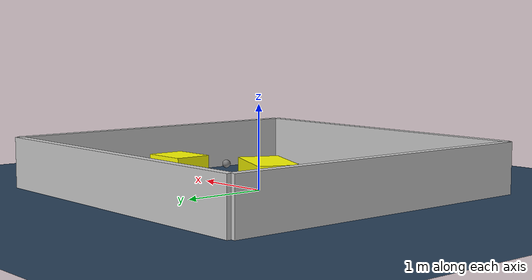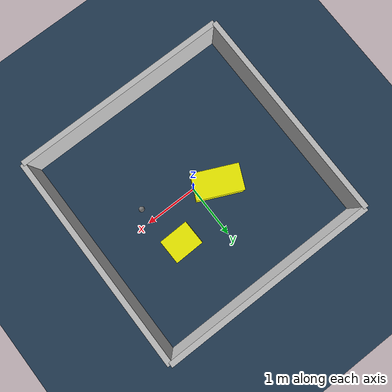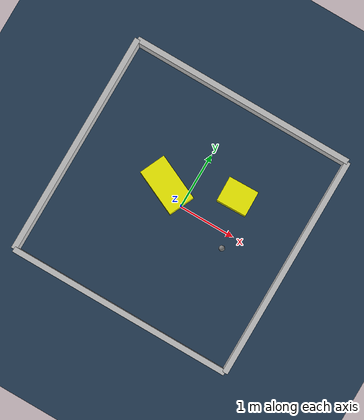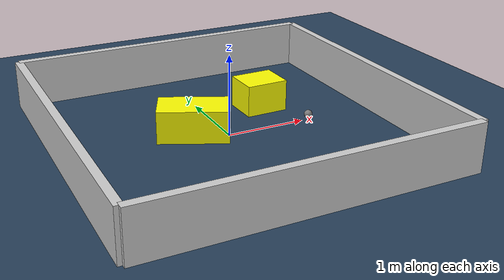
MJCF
<?xml version="1.0" ?>
<mujoco model="generated_environment">
  <option timestep="0.01" integrator="RK4" cone="elliptic"/>
  <default>
    <geom density="1"/>
  </default>
  <asset>
    <texture builtin="gradient" height="3072" rgb1="0.3 0.5 0.7" rgb2="0 0 0" type="skybox" width="512"/>
    <texture builtin="checker" height="300" mark="edge" markrgb="0.8 0.8 0.8" name="groundplane" rgb1="0.2 0.3 0.4" rgb2="0.1 0.2 0.3" type="2d" width="300"/>
    <material name="groundplane" reflectance="0.2" texrepeat="5 5" texture="groundplane" texuniform="true"/>
    <material name="robot" rgba="0.0 1.0 0.0 1"/>
  </asset>
  <worldbody>
    <light dir="0 0 -1" directional="true" pos="0 0 1.5"/>
    <geom condim="4" friction="1.0 0.005 0.001" material="groundplane" name="floor" size="0 0 0.05" type="plane"/>
    <body name="walls">
      <geom name="wall_1" condim="4" pos="-2.0 0.0 0.3" rgba="0.800000011920929 0.800000011920929 0.800000011920929 1.0" size="0.05 2.0 0.3" type="box"/>
      <geom name="wall_2" condim="4" pos="2.0 0.0 0.3" rgba="0.800000011920929 0.800000011920929 0.800000011920929 1.0" size="0.05 2.0 0.3" type="box"/>
      <geom name="wall_3" condim="4" pos="0.0 -2.0 0.3" rgba="0.800000011920929 0.800000011920929 0.800000011920929 1.0" size="2.0 0.05 0.3" type="box"/>
      <geom name="wall_4" condim="4" pos="0.0 2.0 0.3" rgba="0.800000011920929 0.800000011920929 0.800000011920929 1.0" size="2.0 0.05 0.3" type="box"/>
    </body>
    <body name="robot">
      <joint name="joint_x" type="slide" pos="0 0 0" axis="1 0 0"/>
      <joint name="joint_y" type="slide" pos="0 0 0" axis="0 1 0"/>
      <geom name="robot" type="sphere" pos="0.9309177934274664 -0.2566684570783597 0.2" size="0.05" mass="5." friction="1.0 0.005 0.0001" condim="4"/>
      <site name="sensor_ball"/>
    </body>
    <body name="obstacle_1_movable">
      <geom name="obstacle_1_movable" condim="4" pos="0.721962427760757 0.6088291767605953 0.2" euler="0 0 1.257092278193248" friction="1.0 0.005 0.001" rgba="1 1 0 1" size="0.27036398961762886 0.22371631411284085 0.2" type="box" mass="0.1"/>
      <joint type="free"/>
    </body>
    <body name="obstacle_2_movable">
      <geom name="obstacle_2_movable" condim="4" pos="-0.37857653583468887 0.18091187619678184 0.2" euler="0 0 245.4597541008342" friction="1.0 0.005 0.001" rgba="1 1 0 1" size="0.23847495430412924 0.42654995475611307 0.2" type="box" mass="0.1"/>
      <joint type="free"/>
    </body>
  </worldbody>
  <actuator>
    <motor name="actuator_x" joint="joint_x" gear="1" ctrlrange="-1 1"/>
    <motor name="actuator_y" joint="joint_y" gear="1" ctrlrange="-1 1"/>
  </actuator>
</mujoco>
